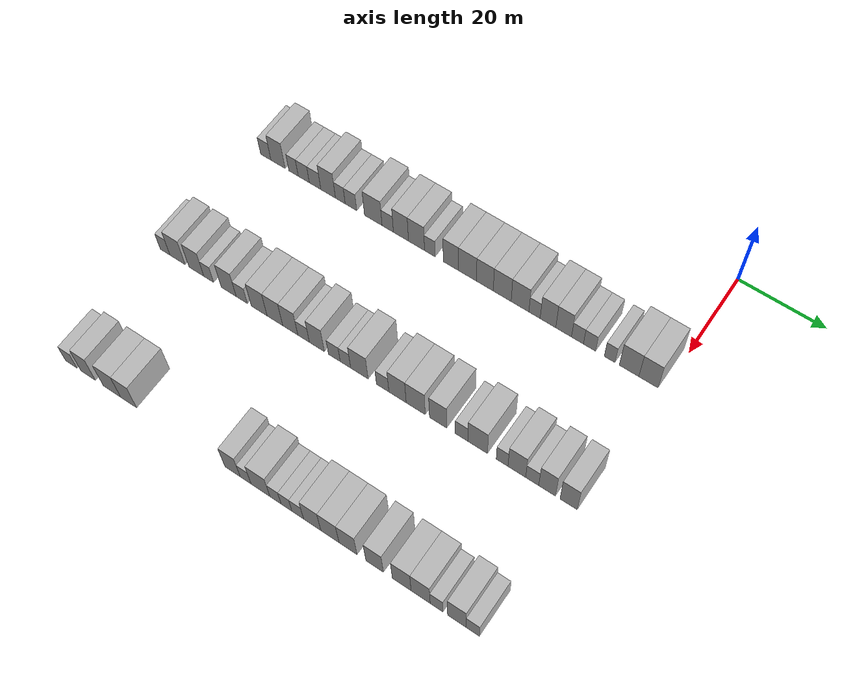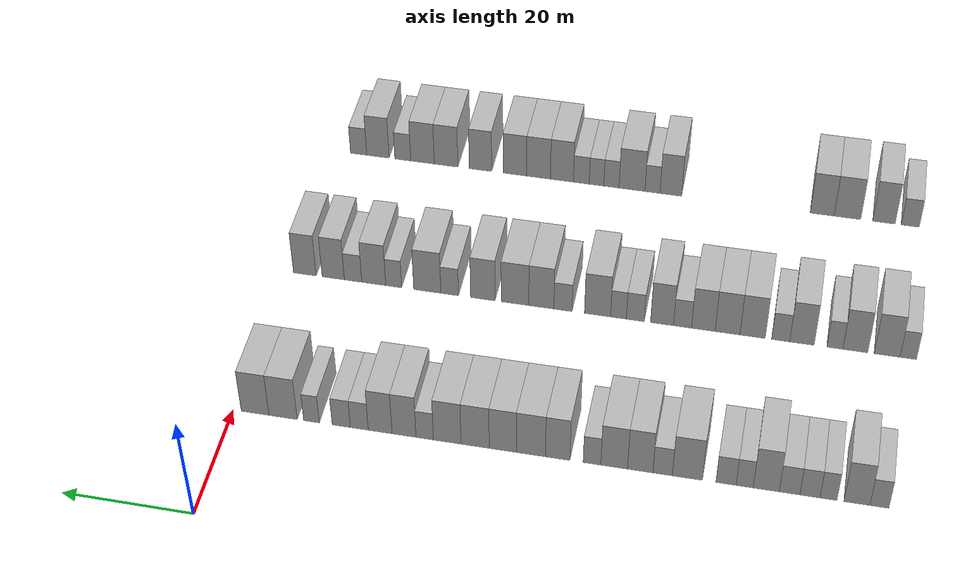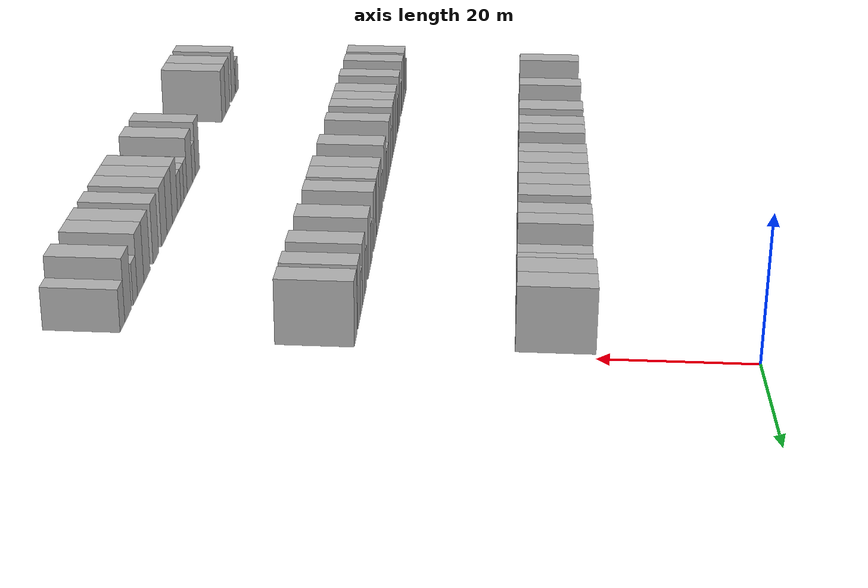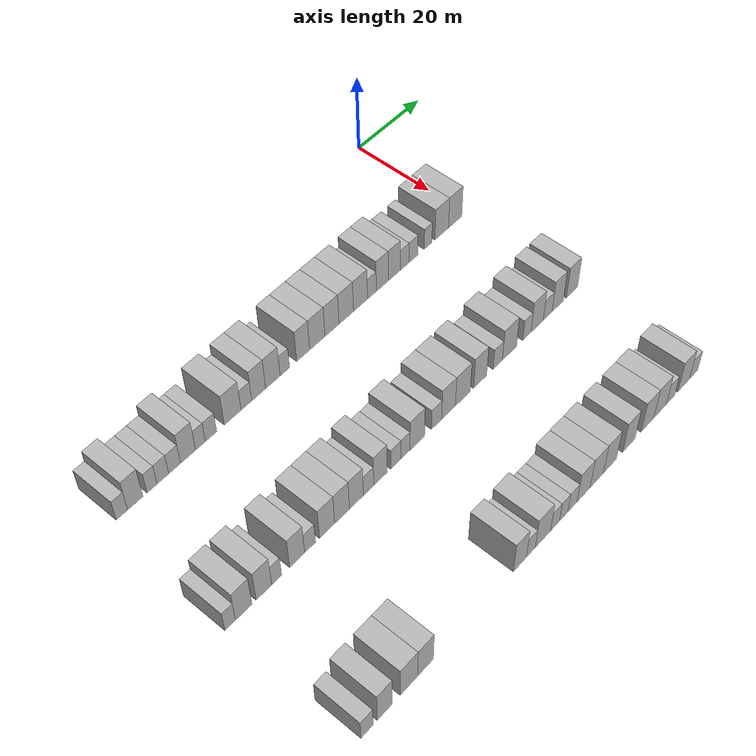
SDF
<sdf version="1.6">
 <world name="default">
  <model name="building_48">
   <static>1</static>
   <pose>25.0000 -97.3295 0 0.000000 0.000000 0.000000</pose>
   <link name="link">
    <pose>0 0 3.00 0 0 0</pose>
    <collision name="collision"><geometry><box><size>10.0000 2.7321 6.0000</size></box></geometry></collision>
    <visual name="visual">
     <cast_shadows>0</cast_shadows>
     <geometry><box><size>10.0000 2.7321 6.0000</size></box></geometry>
     <material>
      <script>
       <uri>model://HANNAS_wall/materials/scripts</uri>
       <uri>model://HANNAS_wall/materials/textures</uri>
       <name>vrc/HANNAS_wall</name>
      </script>
     </material>
    </visual>
   </link>
  </model>
  <model name="building_49">
   <static>1</static>
   <pose>25.0000 -94.0868 0 0.000000 0.000000 0.000000</pose>
   <link name="link">
    <pose>0 0 4.50 0 0 0</pose>
    <collision name="collision"><geometry><box><size>10.0000 3.7533 9.0000</size></box></geometry></collision>
    <visual name="visual">
     <cast_shadows>0</cast_shadows>
     <geometry><box><size>10.0000 3.7533 9.0000</size></box></geometry>
     <material>
      <script>
       <uri>model://HANNAS_wall/materials/scripts</uri>
       <uri>model://HANNAS_wall/materials/textures</uri>
       <name>vrc/HANNAS_wall</name>
      </script>
     </material>
    </visual>
   </link>
  </model>
  <model name="building_50">
   <static>1</static>
   <pose>25.0000 -89.9725 0 0.000000 0.000000 0.000000</pose>
   <link name="link">
    <pose>0 0 3.00 0 0 0</pose>
    <collision name="collision"><geometry><box><size>10.0000 2.4754 6.0000</size></box></geometry></collision>
    <visual name="visual">
     <cast_shadows>0</cast_shadows>
     <geometry><box><size>10.0000 2.4754 6.0000</size></box></geometry>
     <material>
      <script>
       <uri>model://HANNAS_wall/materials/scripts</uri>
       <uri>model://HANNAS_wall/materials/textures</uri>
       <name>vrc/HANNAS_wall</name>
      </script>
     </material>
    </visual>
   </link>
  </model>
  <model name="building_51">
   <static>1</static>
   <pose>25.0000 -87.2771 0 0.000000 0.000000 0.000000</pose>
   <link name="link">
    <pose>0 0 3.00 0 0 0</pose>
    <collision name="collision"><geometry><box><size>10.0000 2.9154 6.0000</size></box></geometry></collision>
    <visual name="visual">
     <cast_shadows>0</cast_shadows>
     <geometry><box><size>10.0000 2.9154 6.0000</size></box></geometry>
     <material>
      <script>
       <uri>model://HANNAS_wall/materials/scripts</uri>
       <uri>model://HANNAS_wall/materials/textures</uri>
       <name>vrc/HANNAS_wall</name>
      </script>
     </material>
    </visual>
   </link>
  </model>
  <model name="building_52">
   <static>1</static>
   <pose>25.0000 -84.3198 0 0.000000 0.000000 0.000000</pose>
   <link name="link">
    <pose>0 0 3.00 0 0 0</pose>
    <collision name="collision"><geometry><box><size>10.0000 2.9992 6.0000</size></box></geometry></collision>
    <visual name="visual">
     <cast_shadows>0</cast_shadows>
     <geometry><box><size>10.0000 2.9992 6.0000</size></box></geometry>
     <material>
      <script>
       <uri>model://HANNAS_wall/materials/scripts</uri>
       <uri>model://HANNAS_wall/materials/textures</uri>
       <name>vrc/HANNAS_wall</name>
      </script>
     </material>
    </visual>
   </link>
  </model>
  <model name="building_53">
   <static>1</static>
   <pose>25.0000 -80.9112 0 0.000000 0.000000 0.000000</pose>
   <link name="link">
    <pose>0 0 4.50 0 0 0</pose>
    <collision name="collision"><geometry><box><size>10.0000 3.8180 9.0000</size></box></geometry></collision>
    <visual name="visual">
     <cast_shadows>0</cast_shadows>
     <geometry><box><size>10.0000 3.8180 9.0000</size></box></geometry>
     <material>
      <script>
       <uri>model://HANNAS_wall/materials/scripts</uri>
       <uri>model://HANNAS_wall/materials/textures</uri>
       <name>vrc/HANNAS_wall</name>
      </script>
     </material>
    </visual>
   </link>
  </model>
  <model name="building_54">
   <static>1</static>
   <pose>25.0000 -77.7514 0 0.000000 0.000000 0.000000</pose>
   <link name="link">
    <pose>0 0 3.00 0 0 0</pose>
    <collision name="collision"><geometry><box><size>10.0000 2.5016 6.0000</size></box></geometry></collision>
    <visual name="visual">
     <cast_shadows>0</cast_shadows>
     <geometry><box><size>10.0000 2.5016 6.0000</size></box></geometry>
     <material>
      <script>
       <uri>model://HANNAS_wall/materials/scripts</uri>
       <uri>model://HANNAS_wall/materials/textures</uri>
       <name>vrc/HANNAS_wall</name>
      </script>
     </material>
    </visual>
   </link>
  </model>
  <model name="building_55">
   <static>1</static>
   <pose>25.0000 -75.0186 0 0.000000 0.000000 0.000000</pose>
   <link name="link">
    <pose>0 0 3.00 0 0 0</pose>
    <collision name="collision"><geometry><box><size>10.0000 2.9640 6.0000</size></box></geometry></collision>
    <visual name="visual">
     <cast_shadows>0</cast_shadows>
     <geometry><box><size>10.0000 2.9640 6.0000</size></box></geometry>
     <material>
      <script>
       <uri>model://HANNAS_wall/materials/scripts</uri>
       <uri>model://HANNAS_wall/materials/textures</uri>
       <name>vrc/HANNAS_wall</name>
      </script>
     </material>
    </visual>
   </link>
  </model>
  <model name="building_56">
   <static>1</static>
   <pose>25.0000 -69.3119 0 0.000000 0.000000 0.000000</pose>
   <link name="link">
    <pose>0 0 4.50 0 0 0</pose>
    <collision name="collision"><geometry><box><size>10.0000 4.4494 9.0000</size></box></geometry></collision>
    <visual name="visual">
     <cast_shadows>0</cast_shadows>
     <geometry><box><size>10.0000 4.4494 9.0000</size></box></geometry>
     <material>
      <script>
       <uri>model://HANNAS_wall/materials/scripts</uri>
       <uri>model://HANNAS_wall/materials/textures</uri>
       <name>vrc/HANNAS_wall</name>
      </script>
     </material>
    </visual>
   </link>
  </model>
  <model name="building_57">
   <static>1</static>
   <pose>25.0000 -65.6506 0 0.000000 0.000000 0.000000</pose>
   <link name="link">
    <pose>0 0 3.00 0 0 0</pose>
    <collision name="collision"><geometry><box><size>10.0000 2.8732 6.0000</size></box></geometry></collision>
    <visual name="visual">
     <cast_shadows>0</cast_shadows>
     <geometry><box><size>10.0000 2.8732 6.0000</size></box></geometry>
     <material>
      <script>
       <uri>model://HANNAS_wall/materials/scripts</uri>
       <uri>model://HANNAS_wall/materials/textures</uri>
       <name>vrc/HANNAS_wall</name>
      </script>
     </material>
    </visual>
   </link>
  </model>
  <model name="building_58">
   <static>1</static>
   <pose>25.0000 -62.3224 0 0.000000 0.000000 0.000000</pose>
   <link name="link">
    <pose>0 0 4.50 0 0 0</pose>
    <collision name="collision"><geometry><box><size>10.0000 3.7832 9.0000</size></box></geometry></collision>
    <visual name="visual">
     <cast_shadows>0</cast_shadows>
     <geometry><box><size>10.0000 3.7832 9.0000</size></box></geometry>
     <material>
      <script>
       <uri>model://HANNAS_wall/materials/scripts</uri>
       <uri>model://HANNAS_wall/materials/textures</uri>
       <name>vrc/HANNAS_wall</name>
      </script>
     </material>
    </visual>
   </link>
  </model>
  <model name="building_59">
   <static>1</static>
   <pose>25.0000 -58.4330 0 0.000000 0.000000 0.000000</pose>
   <link name="link">
    <pose>0 0 4.50 0 0 0</pose>
    <collision name="collision"><geometry><box><size>10.0000 3.9956 9.0000</size></box></geometry></collision>
    <visual name="visual">
     <cast_shadows>0</cast_shadows>
     <geometry><box><size>10.0000 3.9956 9.0000</size></box></geometry>
     <material>
      <script>
       <uri>model://HANNAS_wall/materials/scripts</uri>
       <uri>model://HANNAS_wall/materials/textures</uri>
       <name>vrc/HANNAS_wall</name>
      </script>
     </material>
    </visual>
   </link>
  </model>
  <model name="building_60">
   <static>1</static>
   <pose>25.0000 -55.1191 0 0.000000 0.000000 0.000000</pose>
   <link name="link">
    <pose>0 0 3.00 0 0 0</pose>
    <collision name="collision"><geometry><box><size>10.0000 2.6323 6.0000</size></box></geometry></collision>
    <visual name="visual">
     <cast_shadows>0</cast_shadows>
     <geometry><box><size>10.0000 2.6323 6.0000</size></box></geometry>
     <material>
      <script>
       <uri>model://HANNAS_wall/materials/scripts</uri>
       <uri>model://HANNAS_wall/materials/textures</uri>
       <name>vrc/HANNAS_wall</name>
      </script>
     </material>
    </visual>
   </link>
  </model>
  <model name="building_61">
   <static>1</static>
   <pose>25.0000 -49.9609 0 0.000000 0.000000 0.000000</pose>
   <link name="link">
    <pose>0 0 4.50 0 0 0</pose>
    <collision name="collision"><geometry><box><size>10.0000 3.6841 9.0000</size></box></geometry></collision>
    <visual name="visual">
     <cast_shadows>0</cast_shadows>
     <geometry><box><size>10.0000 3.6841 9.0000</size></box></geometry>
     <material>
      <script>
       <uri>model://HANNAS_wall/materials/scripts</uri>
       <uri>model://HANNAS_wall/materials/textures</uri>
       <name>vrc/HANNAS_wall</name>
      </script>
     </material>
    </visual>
   </link>
  </model>
  <model name="building_62">
   <static>1</static>
   <pose>25.0000 -45.9126 0 0.000000 0.000000 0.000000</pose>
   <link name="link">
    <pose>0 0 4.50 0 0 0</pose>
    <collision name="collision"><geometry><box><size>10.0000 4.4127 9.0000</size></box></geometry></collision>
    <visual name="visual">
     <cast_shadows>0</cast_shadows>
     <geometry><box><size>10.0000 4.4127 9.0000</size></box></geometry>
     <material>
      <script>
       <uri>model://HANNAS_wall/materials/scripts</uri>
       <uri>model://HANNAS_wall/materials/textures</uri>
       <name>vrc/HANNAS_wall</name>
      </script>
     </material>
    </visual>
   </link>
  </model>
  <model name="building_63">
   <static>1</static>
   <pose>25.0000 -41.6601 0 0.000000 0.000000 0.000000</pose>
   <link name="link">
    <pose>0 0 4.50 0 0 0</pose>
    <collision name="collision"><geometry><box><size>10.0000 4.0923 9.0000</size></box></geometry></collision>
    <visual name="visual">
     <cast_shadows>0</cast_shadows>
     <geometry><box><size>10.0000 4.0923 9.0000</size></box></geometry>
     <material>
      <script>
       <uri>model://HANNAS_wall/materials/scripts</uri>
       <uri>model://HANNAS_wall/materials/textures</uri>
       <name>vrc/HANNAS_wall</name>
      </script>
     </material>
    </visual>
   </link>
  </model>
  <model name="building_64">
   <static>1</static>
   <pose>25.0000 -37.4674 0 0.000000 0.000000 0.000000</pose>
   <link name="link">
    <pose>0 0 4.50 0 0 0</pose>
    <collision name="collision"><geometry><box><size>10.0000 4.2931 9.0000</size></box></geometry></collision>
    <visual name="visual">
     <cast_shadows>0</cast_shadows>
     <geometry><box><size>10.0000 4.2931 9.0000</size></box></geometry>
     <material>
      <script>
       <uri>model://HANNAS_wall/materials/scripts</uri>
       <uri>model://HANNAS_wall/materials/textures</uri>
       <name>vrc/HANNAS_wall</name>
      </script>
     </material>
    </visual>
   </link>
  </model>
  <model name="building_65">
   <static>1</static>
   <pose>25.0000 -33.2073 0 0.000000 0.000000 0.000000</pose>
   <link name="link">
    <pose>0 0 4.50 0 0 0</pose>
    <collision name="collision"><geometry><box><size>10.0000 4.2271 9.0000</size></box></geometry></collision>
    <visual name="visual">
     <cast_shadows>0</cast_shadows>
     <geometry><box><size>10.0000 4.2271 9.0000</size></box></geometry>
     <material>
      <script>
       <uri>model://HANNAS_wall/materials/scripts</uri>
       <uri>model://HANNAS_wall/materials/textures</uri>
       <name>vrc/HANNAS_wall</name>
      </script>
     </material>
    </visual>
   </link>
  </model>
  <model name="building_66">
   <static>1</static>
   <pose>25.0000 -29.7613 0 0.000000 0.000000 0.000000</pose>
   <link name="link">
    <pose>0 0 3.00 0 0 0</pose>
    <collision name="collision"><geometry><box><size>10.0000 2.6650 6.0000</size></box></geometry></collision>
    <visual name="visual">
     <cast_shadows>0</cast_shadows>
     <geometry><box><size>10.0000 2.6650 6.0000</size></box></geometry>
     <material>
      <script>
       <uri>model://HANNAS_wall/materials/scripts</uri>
       <uri>model://HANNAS_wall/materials/textures</uri>
       <name>vrc/HANNAS_wall</name>
      </script>
     </material>
    </visual>
   </link>
  </model>
  <model name="building_67">
   <static>1</static>
   <pose>25.0000 -26.5884 0 0.000000 0.000000 0.000000</pose>
   <link name="link">
    <pose>0 0 4.50 0 0 0</pose>
    <collision name="collision"><geometry><box><size>10.0000 3.6808 9.0000</size></box></geometry></collision>
    <visual name="visual">
     <cast_shadows>0</cast_shadows>
     <geometry><box><size>10.0000 3.6808 9.0000</size></box></geometry>
     <material>
      <script>
       <uri>model://HANNAS_wall/materials/scripts</uri>
       <uri>model://HANNAS_wall/materials/textures</uri>
       <name>vrc/HANNAS_wall</name>
      </script>
     </material>
    </visual>
   </link>
  </model>
  <model name="building_68">
   <static>1</static>
   <pose>25.0000 -22.9116 0 0.000000 0.000000 0.000000</pose>
   <link name="link">
    <pose>0 0 4.50 0 0 0</pose>
    <collision name="collision"><geometry><box><size>10.0000 3.6726 9.0000</size></box></geometry></collision>
    <visual name="visual">
     <cast_shadows>0</cast_shadows>
     <geometry><box><size>10.0000 3.6726 9.0000</size></box></geometry>
     <material>
      <script>
       <uri>model://HANNAS_wall/materials/scripts</uri>
       <uri>model://HANNAS_wall/materials/textures</uri>
       <name>vrc/HANNAS_wall</name>
      </script>
     </material>
    </visual>
   </link>
  </model>
  <model name="building_69">
   <static>1</static>
   <pose>25.0000 -19.6839 0 0.000000 0.000000 0.000000</pose>
   <link name="link">
    <pose>0 0 3.00 0 0 0</pose>
    <collision name="collision"><geometry><box><size>10.0000 2.7829 6.0000</size></box></geometry></collision>
    <visual name="visual">
     <cast_shadows>0</cast_shadows>
     <geometry><box><size>10.0000 2.7829 6.0000</size></box></geometry>
     <material>
      <script>
       <uri>model://HANNAS_wall/materials/scripts</uri>
       <uri>model://HANNAS_wall/materials/textures</uri>
       <name>vrc/HANNAS_wall</name>
      </script>
     </material>
    </visual>
   </link>
  </model>
  <model name="building_70">
   <static>1</static>
   <pose>25.0000 -16.8830 0 0.000000 0.000000 0.000000</pose>
   <link name="link">
    <pose>0 0 3.00 0 0 0</pose>
    <collision name="collision"><geometry><box><size>10.0000 2.8188 6.0000</size></box></geometry></collision>
    <visual name="visual">
     <cast_shadows>0</cast_shadows>
     <geometry><box><size>10.0000 2.8188 6.0000</size></box></geometry>
     <material>
      <script>
       <uri>model://HANNAS_wall/materials/scripts</uri>
       <uri>model://HANNAS_wall/materials/textures</uri>
       <name>vrc/HANNAS_wall</name>
      </script>
     </material>
    </visual>
   </link>
  </model>
  <model name="building_71">
   <static>1</static>
   <pose>25.0000 -12.2518 0 0.000000 0.000000 0.000000</pose>
   <link name="link">
    <pose>0 0 3.00 0 0 0</pose>
    <collision name="collision"><geometry><box><size>10.0000 2.4435 6.0000</size></box></geometry></collision>
    <visual name="visual">
     <cast_shadows>0</cast_shadows>
     <geometry><box><size>10.0000 2.4435 6.0000</size></box></geometry>
     <material>
      <script>
       <uri>model://HANNAS_wall/materials/scripts</uri>
       <uri>model://HANNAS_wall/materials/textures</uri>
       <name>vrc/HANNAS_wall</name>
      </script>
     </material>
    </visual>
   </link>
  </model>
  <model name="building_72">
   <static>1</static>
   <pose>25.0000 -7.8174 0 0.000000 0.000000 0.000000</pose>
   <link name="link">
    <pose>0 0 4.50 0 0 0</pose>
    <collision name="collision"><geometry><box><size>10.0000 4.4253 9.0000</size></box></geometry></collision>
    <visual name="visual">
     <cast_shadows>0</cast_shadows>
     <geometry><box><size>10.0000 4.4253 9.0000</size></box></geometry>
     <material>
      <script>
       <uri>model://HANNAS_wall/materials/scripts</uri>
       <uri>model://HANNAS_wall/materials/textures</uri>
       <name>vrc/HANNAS_wall</name>
      </script>
     </material>
    </visual>
   </link>
  </model>
  <model name="building_73">
   <static>1</static>
   <pose>25.0000 -3.4283 0 0.000000 0.000000 0.000000</pose>
   <link name="link">
    <pose>0 0 4.50 0 0 0</pose>
    <collision name="collision"><geometry><box><size>10.0000 4.3529 9.0000</size></box></geometry></collision>
    <visual name="visual">
     <cast_shadows>0</cast_shadows>
     <geometry><box><size>10.0000 4.3529 9.0000</size></box></geometry>
     <material>
      <script>
       <uri>model://HANNAS_wall/materials/scripts</uri>
       <uri>model://HANNAS_wall/materials/textures</uri>
       <name>vrc/HANNAS_wall</name>
      </script>
     </material>
    </visual>
   </link>
  </model>
  <model name="building_190">
   <static>1</static>
   <pose>55.0000 -100.1176 0 0.000000 0.000000 0.000000</pose>
   <link name="link">
    <pose>0 0 3.00 0 0 0</pose>
    <collision name="collision"><geometry><box><size>10.0000 2.5347 6.0000</size></box></geometry></collision>
    <visual name="visual">
     <cast_shadows>0</cast_shadows>
     <geometry><box><size>10.0000 2.5347 6.0000</size></box></geometry>
     <material>
      <script>
       <uri>model://HANNAS_wall/materials/scripts</uri>
       <uri>model://HANNAS_wall/materials/textures</uri>
       <name>vrc/HANNAS_wall</name>
      </script>
     </material>
    </visual>
   </link>
  </model>
  <model name="building_191">
   <static>1</static>
   <pose>55.0000 -96.8507 0 0.000000 0.000000 0.000000</pose>
   <link name="link">
    <pose>0 0 4.50 0 0 0</pose>
    <collision name="collision"><geometry><box><size>10.0000 3.9991 9.0000</size></box></geometry></collision>
    <visual name="visual">
     <cast_shadows>0</cast_shadows>
     <geometry><box><size>10.0000 3.9991 9.0000</size></box></geometry>
     <material>
      <script>
       <uri>model://HANNAS_wall/materials/scripts</uri>
       <uri>model://HANNAS_wall/materials/textures</uri>
       <name>vrc/HANNAS_wall</name>
      </script>
     </material>
    </visual>
   </link>
  </model>
  <model name="building_192">
   <static>1</static>
   <pose>55.0000 -91.9176 0 0.000000 0.000000 0.000000</pose>
   <link name="link">
    <pose>0 0 4.50 0 0 0</pose>
    <collision name="collision"><geometry><box><size>10.0000 3.8671 9.0000</size></box></geometry></collision>
    <visual name="visual">
     <cast_shadows>0</cast_shadows>
     <geometry><box><size>10.0000 3.8671 9.0000</size></box></geometry>
     <material>
      <script>
       <uri>model://HANNAS_wall/materials/scripts</uri>
       <uri>model://HANNAS_wall/materials/textures</uri>
       <name>vrc/HANNAS_wall</name>
      </script>
     </material>
    </visual>
   </link>
  </model>
  <model name="building_193">
   <static>1</static>
   <pose>55.0000 -88.7421 0 0.000000 0.000000 0.000000</pose>
   <link name="link">
    <pose>0 0 3.00 0 0 0</pose>
    <collision name="collision"><geometry><box><size>10.0000 2.4838 6.0000</size></box></geometry></collision>
    <visual name="visual">
     <cast_shadows>0</cast_shadows>
     <geometry><box><size>10.0000 2.4838 6.0000</size></box></geometry>
     <material>
      <script>
       <uri>model://HANNAS_wall/materials/scripts</uri>
       <uri>model://HANNAS_wall/materials/textures</uri>
       <name>vrc/HANNAS_wall</name>
      </script>
     </material>
    </visual>
   </link>
  </model>
  <model name="building_194">
   <static>1</static>
   <pose>55.0000 -83.5907 0 0.000000 0.000000 0.000000</pose>
   <link name="link">
    <pose>0 0 4.50 0 0 0</pose>
    <collision name="collision"><geometry><box><size>10.0000 3.8189 9.0000</size></box></geometry></collision>
    <visual name="visual">
     <cast_shadows>0</cast_shadows>
     <geometry><box><size>10.0000 3.8189 9.0000</size></box></geometry>
     <material>
      <script>
       <uri>model://HANNAS_wall/materials/scripts</uri>
       <uri>model://HANNAS_wall/materials/textures</uri>
       <name>vrc/HANNAS_wall</name>
      </script>
     </material>
    </visual>
   </link>
  </model>
  <model name="building_195">
   <static>1</static>
   <pose>55.0000 -80.2607 0 0.000000 0.000000 0.000000</pose>
   <link name="link">
    <pose>0 0 3.00 0 0 0</pose>
    <collision name="collision"><geometry><box><size>10.0000 2.8410 6.0000</size></box></geometry></collision>
    <visual name="visual">
     <cast_shadows>0</cast_shadows>
     <geometry><box><size>10.0000 2.8410 6.0000</size></box></geometry>
     <material>
      <script>
       <uri>model://HANNAS_wall/materials/scripts</uri>
       <uri>model://HANNAS_wall/materials/textures</uri>
       <name>vrc/HANNAS_wall</name>
      </script>
     </material>
    </visual>
   </link>
  </model>
  <model name="building_196">
   <static>1</static>
   <pose>55.0000 -75.8495 0 0.000000 0.000000 0.000000</pose>
   <link name="link">
    <pose>0 0 4.50 0 0 0</pose>
    <collision name="collision"><geometry><box><size>10.0000 3.9814 9.0000</size></box></geometry></collision>
    <visual name="visual">
     <cast_shadows>0</cast_shadows>
     <geometry><box><size>10.0000 3.9814 9.0000</size></box></geometry>
     <material>
      <script>
       <uri>model://HANNAS_wall/materials/scripts</uri>
       <uri>model://HANNAS_wall/materials/textures</uri>
       <name>vrc/HANNAS_wall</name>
      </script>
     </material>
    </visual>
   </link>
  </model>
  <model name="building_197">
   <static>1</static>
   <pose>55.0000 -71.8935 0 0.000000 0.000000 0.000000</pose>
   <link name="link">
    <pose>0 0 4.50 0 0 0</pose>
    <collision name="collision"><geometry><box><size>10.0000 3.9306 9.0000</size></box></geometry></collision>
    <visual name="visual">
     <cast_shadows>0</cast_shadows>
     <geometry><box><size>10.0000 3.9306 9.0000</size></box></geometry>
     <material>
      <script>
       <uri>model://HANNAS_wall/materials/scripts</uri>
       <uri>model://HANNAS_wall/materials/textures</uri>
       <name>vrc/HANNAS_wall</name>
      </script>
     </material>
    </visual>
   </link>
  </model>
  <model name="building_198">
   <static>1</static>
   <pose>55.0000 -68.0519 0 0.000000 0.000000 0.000000</pose>
   <link name="link">
    <pose>0 0 4.50 0 0 0</pose>
    <collision name="collision"><geometry><box><size>10.0000 3.7526 9.0000</size></box></geometry></collision>
    <visual name="visual">
     <cast_shadows>0</cast_shadows>
     <geometry><box><size>10.0000 3.7526 9.0000</size></box></geometry>
     <material>
      <script>
       <uri>model://HANNAS_wall/materials/scripts</uri>
       <uri>model://HANNAS_wall/materials/textures</uri>
       <name>vrc/HANNAS_wall</name>
      </script>
     </material>
    </visual>
   </link>
  </model>
  <model name="building_199">
   <static>1</static>
   <pose>55.0000 -64.7475 0 0.000000 0.000000 0.000000</pose>
   <link name="link">
    <pose>0 0 3.00 0 0 0</pose>
    <collision name="collision"><geometry><box><size>10.0000 2.8561 6.0000</size></box></geometry></collision>
    <visual name="visual">
     <cast_shadows>0</cast_shadows>
     <geometry><box><size>10.0000 2.8561 6.0000</size></box></geometry>
     <material>
      <script>
       <uri>model://HANNAS_wall/materials/scripts</uri>
       <uri>model://HANNAS_wall/materials/textures</uri>
       <name>vrc/HANNAS_wall</name>
      </script>
     </material>
    </visual>
   </link>
  </model>
  <model name="building_200">
   <static>1</static>
   <pose>55.0000 -61.4829 0 0.000000 0.000000 0.000000</pose>
   <link name="link">
    <pose>0 0 4.50 0 0 0</pose>
    <collision name="collision"><geometry><box><size>10.0000 3.6731 9.0000</size></box></geometry></collision>
    <visual name="visual">
     <cast_shadows>0</cast_shadows>
     <geometry><box><size>10.0000 3.6731 9.0000</size></box></geometry>
     <material>
      <script>
       <uri>model://HANNAS_wall/materials/scripts</uri>
       <uri>model://HANNAS_wall/materials/textures</uri>
       <name>vrc/HANNAS_wall</name>
      </script>
     </material>
    </visual>
   </link>
  </model>
  <model name="building_201">
   <static>1</static>
   <pose>55.0000 -57.2095 0 0.000000 0.000000 0.000000</pose>
   <link name="link">
    <pose>0 0 3.00 0 0 0</pose>
    <collision name="collision"><geometry><box><size>10.0000 2.8739 6.0000</size></box></geometry></collision>
    <visual name="visual">
     <cast_shadows>0</cast_shadows>
     <geometry><box><size>10.0000 2.8739 6.0000</size></box></geometry>
     <material>
      <script>
       <uri>model://HANNAS_wall/materials/scripts</uri>
       <uri>model://HANNAS_wall/materials/textures</uri>
       <name>vrc/HANNAS_wall</name>
      </script>
     </material>
    </visual>
   </link>
  </model>
  <model name="building_202">
   <static>1</static>
   <pose>55.0000 -54.5111 0 0.000000 0.000000 0.000000</pose>
   <link name="link">
    <pose>0 0 3.00 0 0 0</pose>
    <collision name="collision"><geometry><box><size>10.0000 2.5228 6.0000</size></box></geometry></collision>
    <visual name="visual">
     <cast_shadows>0</cast_shadows>
     <geometry><box><size>10.0000 2.5228 6.0000</size></box></geometry>
     <material>
      <script>
       <uri>model://HANNAS_wall/materials/scripts</uri>
       <uri>model://HANNAS_wall/materials/textures</uri>
       <name>vrc/HANNAS_wall</name>
      </script>
     </material>
    </visual>
   </link>
  </model>
  <model name="building_203">
   <static>1</static>
   <pose>55.0000 -51.1452 0 0.000000 0.000000 0.000000</pose>
   <link name="link">
    <pose>0 0 4.50 0 0 0</pose>
    <collision name="collision"><geometry><box><size>10.0000 4.2090 9.0000</size></box></geometry></collision>
    <visual name="visual">
     <cast_shadows>0</cast_shadows>
     <geometry><box><size>10.0000 4.2090 9.0000</size></box></geometry>
     <material>
      <script>
       <uri>model://HANNAS_wall/materials/scripts</uri>
       <uri>model://HANNAS_wall/materials/textures</uri>
       <name>vrc/HANNAS_wall</name>
      </script>
     </material>
    </visual>
   </link>
  </model>
  <model name="building_204">
   <static>1</static>
   <pose>55.0000 -45.5649 0 0.000000 0.000000 0.000000</pose>
   <link name="link">
    <pose>0 0 3.00 0 0 0</pose>
    <collision name="collision"><geometry><box><size>10.0000 2.9517 6.0000</size></box></geometry></collision>
    <visual name="visual">
     <cast_shadows>0</cast_shadows>
     <geometry><box><size>10.0000 2.9517 6.0000</size></box></geometry>
     <material>
      <script>
       <uri>model://HANNAS_wall/materials/scripts</uri>
       <uri>model://HANNAS_wall/materials/textures</uri>
       <name>vrc/HANNAS_wall</name>
      </script>
     </material>
    </visual>
   </link>
  </model>
  <model name="building_205">
   <static>1</static>
   <pose>55.0000 -42.0455 0 0.000000 0.000000 0.000000</pose>
   <link name="link">
    <pose>0 0 4.50 0 0 0</pose>
    <collision name="collision"><geometry><box><size>10.0000 4.0872 9.0000</size></box></geometry></collision>
    <visual name="visual">
     <cast_shadows>0</cast_shadows>
     <geometry><box><size>10.0000 4.0872 9.0000</size></box></geometry>
     <material>
      <script>
       <uri>model://HANNAS_wall/materials/scripts</uri>
       <uri>model://HANNAS_wall/materials/textures</uri>
       <name>vrc/HANNAS_wall</name>
      </script>
     </material>
    </visual>
   </link>
  </model>
  <model name="building_206">
   <static>1</static>
   <pose>55.0000 -37.7633 0 0.000000 0.000000 0.000000</pose>
   <link name="link">
    <pose>0 0 4.50 0 0 0</pose>
    <collision name="collision"><geometry><box><size>10.0000 4.4772 9.0000</size></box></geometry></collision>
    <visual name="visual">
     <cast_shadows>0</cast_shadows>
     <geometry><box><size>10.0000 4.4772 9.0000</size></box></geometry>
     <material>
      <script>
       <uri>model://HANNAS_wall/materials/scripts</uri>
       <uri>model://HANNAS_wall/materials/textures</uri>
       <name>vrc/HANNAS_wall</name>
      </script>
     </material>
    </visual>
   </link>
  </model>
  <model name="building_207">
   <static>1</static>
   <pose>55.0000 -32.5283 0 0.000000 0.000000 0.000000</pose>
   <link name="link">
    <pose>0 0 4.50 0 0 0</pose>
    <collision name="collision"><geometry><box><size>10.0000 3.9927 9.0000</size></box></geometry></collision>
    <visual name="visual">
     <cast_shadows>0</cast_shadows>
     <geometry><box><size>10.0000 3.9927 9.0000</size></box></geometry>
     <material>
      <script>
       <uri>model://HANNAS_wall/materials/scripts</uri>
       <uri>model://HANNAS_wall/materials/textures</uri>
       <name>vrc/HANNAS_wall</name>
      </script>
     </material>
    </visual>
   </link>
  </model>
  <model name="building_208">
   <static>1</static>
   <pose>55.0000 -27.0818 0 0.000000 0.000000 0.000000</pose>
   <link name="link">
    <pose>0 0 3.00 0 0 0</pose>
    <collision name="collision"><geometry><box><size>10.0000 2.9005 6.0000</size></box></geometry></collision>
    <visual name="visual">
     <cast_shadows>0</cast_shadows>
     <geometry><box><size>10.0000 2.9005 6.0000</size></box></geometry>
     <material>
      <script>
       <uri>model://HANNAS_wall/materials/scripts</uri>
       <uri>model://HANNAS_wall/materials/textures</uri>
       <name>vrc/HANNAS_wall</name>
      </script>
     </material>
    </visual>
   </link>
  </model>
  <model name="building_209">
   <static>1</static>
   <pose>55.0000 -23.3978 0 0.000000 0.000000 0.000000</pose>
   <link name="link">
    <pose>0 0 4.50 0 0 0</pose>
    <collision name="collision"><geometry><box><size>10.0000 4.4674 9.0000</size></box></geometry></collision>
    <visual name="visual">
     <cast_shadows>0</cast_shadows>
     <geometry><box><size>10.0000 4.4674 9.0000</size></box></geometry>
     <material>
      <script>
       <uri>model://HANNAS_wall/materials/scripts</uri>
       <uri>model://HANNAS_wall/materials/textures</uri>
       <name>vrc/HANNAS_wall</name>
      </script>
     </material>
    </visual>
   </link>
  </model>
  <model name="building_210">
   <static>1</static>
   <pose>55.0000 -17.8434 0 0.000000 0.000000 0.000000</pose>
   <link name="link">
    <pose>0 0 3.00 0 0 0</pose>
    <collision name="collision"><geometry><box><size>10.0000 2.6415 6.0000</size></box></geometry></collision>
    <visual name="visual">
     <cast_shadows>0</cast_shadows>
     <geometry><box><size>10.0000 2.6415 6.0000</size></box></geometry>
     <material>
      <script>
       <uri>model://HANNAS_wall/materials/scripts</uri>
       <uri>model://HANNAS_wall/materials/textures</uri>
       <name>vrc/HANNAS_wall</name>
      </script>
     </material>
    </visual>
   </link>
  </model>
  <model name="building_211">
   <static>1</static>
   <pose>55.0000 -14.5338 0 0.000000 0.000000 0.000000</pose>
   <link name="link">
    <pose>0 0 4.50 0 0 0</pose>
    <collision name="collision"><geometry><box><size>10.0000 3.9777 9.0000</size></box></geometry></collision>
    <visual name="visual">
     <cast_shadows>0</cast_shadows>
     <geometry><box><size>10.0000 3.9777 9.0000</size></box></geometry>
     <material>
      <script>
       <uri>model://HANNAS_wall/materials/scripts</uri>
       <uri>model://HANNAS_wall/materials/textures</uri>
       <name>vrc/HANNAS_wall</name>
      </script>
     </material>
    </visual>
   </link>
  </model>
  <model name="building_212">
   <static>1</static>
   <pose>55.0000 -11.0897 0 0.000000 0.000000 0.000000</pose>
   <link name="link">
    <pose>0 0 3.00 0 0 0</pose>
    <collision name="collision"><geometry><box><size>10.0000 2.9104 6.0000</size></box></geometry></collision>
    <visual name="visual">
     <cast_shadows>0</cast_shadows>
     <geometry><box><size>10.0000 2.9104 6.0000</size></box></geometry>
     <material>
      <script>
       <uri>model://HANNAS_wall/materials/scripts</uri>
       <uri>model://HANNAS_wall/materials/textures</uri>
       <name>vrc/HANNAS_wall</name>
      </script>
     </material>
    </visual>
   </link>
  </model>
  <model name="building_213">
   <static>1</static>
   <pose>55.0000 -7.7781 0 0.000000 0.000000 0.000000</pose>
   <link name="link">
    <pose>0 0 4.50 0 0 0</pose>
    <collision name="collision"><geometry><box><size>10.0000 3.7128 9.0000</size></box></geometry></collision>
    <visual name="visual">
     <cast_shadows>0</cast_shadows>
     <geometry><box><size>10.0000 3.7128 9.0000</size></box></geometry>
     <material>
      <script>
       <uri>model://HANNAS_wall/materials/scripts</uri>
       <uri>model://HANNAS_wall/materials/textures</uri>
       <name>vrc/HANNAS_wall</name>
      </script>
     </material>
    </visual>
   </link>
  </model>
  <model name="building_214">
   <static>1</static>
   <pose>55.0000 -3.0209 0 0.000000 0.000000 0.000000</pose>
   <link name="link">
    <pose>0 0 4.50 0 0 0</pose>
    <collision name="collision"><geometry><box><size>10.0000 3.8017 9.0000</size></box></geometry></collision>
    <visual name="visual">
     <cast_shadows>0</cast_shadows>
     <geometry><box><size>10.0000 3.8017 9.0000</size></box></geometry>
     <material>
      <script>
       <uri>model://HANNAS_wall/materials/scripts</uri>
       <uri>model://HANNAS_wall/materials/textures</uri>
       <name>vrc/HANNAS_wall</name>
      </script>
     </material>
    </visual>
   </link>
  </model>
  <model name="building_330">
   <static>1</static>
   <pose>85.0000 -99.0932 0 0.000000 0.000000 0.000000</pose>
   <link name="link">
    <pose>0 0 3.00 0 0 0</pose>
    <collision name="collision"><geometry><box><size>10.0000 2.9792 6.0000</size></box></geometry></collision>
    <visual name="visual">
     <cast_shadows>0</cast_shadows>
     <geometry><box><size>10.0000 2.9792 6.0000</size></box></geometry>
     <material>
      <script>
       <uri>model://HANNAS_wall/materials/scripts</uri>
       <uri>model://HANNAS_wall/materials/textures</uri>
       <name>vrc/HANNAS_wall</name>
      </script>
     </material>
    </visual>
   </link>
  </model>
  <model name="building_331">
   <static>1</static>
   <pose>85.0000 -94.7479 0 0.000000 0.000000 0.000000</pose>
   <link name="link">
    <pose>0 0 4.50 0 0 0</pose>
    <collision name="collision"><geometry><box><size>10.0000 3.7113 9.0000</size></box></geometry></collision>
    <visual name="visual">
     <cast_shadows>0</cast_shadows>
     <geometry><box><size>10.0000 3.7113 9.0000</size></box></geometry>
     <material>
      <script>
       <uri>model://HANNAS_wall/materials/scripts</uri>
       <uri>model://HANNAS_wall/materials/textures</uri>
       <name>vrc/HANNAS_wall</name>
      </script>
     </material>
    </visual>
   </link>
  </model>
  <model name="building_332">
   <static>1</static>
   <pose>85.0000 -88.6789 0 0.000000 0.000000 0.000000</pose>
   <link name="link">
    <pose>0 0 4.50 0 0 0</pose>
    <collision name="collision"><geometry><box><size>10.0000 4.4268 9.0000</size></box></geometry></collision>
    <visual name="visual">
     <cast_shadows>0</cast_shadows>
     <geometry><box><size>10.0000 4.4268 9.0000</size></box></geometry>
     <material>
      <script>
       <uri>model://HANNAS_wall/materials/scripts</uri>
       <uri>model://HANNAS_wall/materials/textures</uri>
       <name>vrc/HANNAS_wall</name>
      </script>
     </material>
    </visual>
   </link>
  </model>
  <model name="building_333">
   <static>1</static>
   <pose>85.0000 -84.4636 0 0.000000 0.000000 0.000000</pose>
   <link name="link">
    <pose>0 0 4.50 0 0 0</pose>
    <collision name="collision"><geometry><box><size>10.0000 4.0038 9.0000</size></box></geometry></collision>
    <visual name="visual">
     <cast_shadows>0</cast_shadows>
     <geometry><box><size>10.0000 4.0038 9.0000</size></box></geometry>
     <material>
      <script>
       <uri>model://HANNAS_wall/materials/scripts</uri>
       <uri>model://HANNAS_wall/materials/textures</uri>
       <name>vrc/HANNAS_wall</name>
      </script>
     </material>
    </visual>
   </link>
  </model>
  <model name="building_334">
   <static>1</static>
   <pose>85.0000 -58.9041 0 0.000000 0.000000 0.000000</pose>
   <link name="link">
    <pose>0 0 4.50 0 0 0</pose>
    <collision name="collision"><geometry><box><size>10.0000 3.7050 9.0000</size></box></geometry></collision>
    <visual name="visual">
     <cast_shadows>0</cast_shadows>
     <geometry><box><size>10.0000 3.7050 9.0000</size></box></geometry>
     <material>
      <script>
       <uri>model://HANNAS_wall/materials/scripts</uri>
       <uri>model://HANNAS_wall/materials/textures</uri>
       <name>vrc/HANNAS_wall</name>
      </script>
     </material>
    </visual>
   </link>
  </model>
  <model name="building_335">
   <static>1</static>
   <pose>85.0000 -55.7667 0 0.000000 0.000000 0.000000</pose>
   <link name="link">
    <pose>0 0 3.00 0 0 0</pose>
    <collision name="collision"><geometry><box><size>10.0000 2.5699 6.0000</size></box></geometry></collision>
    <visual name="visual">
     <cast_shadows>0</cast_shadows>
     <geometry><box><size>10.0000 2.5699 6.0000</size></box></geometry>
     <material>
      <script>
       <uri>model://HANNAS_wall/materials/scripts</uri>
       <uri>model://HANNAS_wall/materials/textures</uri>
       <name>vrc/HANNAS_wall</name>
      </script>
     </material>
    </visual>
   </link>
  </model>
  <model name="building_336">
   <static>1</static>
   <pose>85.0000 -52.2597 0 0.000000 0.000000 0.000000</pose>
   <link name="link">
    <pose>0 0 4.50 0 0 0</pose>
    <collision name="collision"><geometry><box><size>10.0000 4.4441 9.0000</size></box></geometry></collision>
    <visual name="visual">
     <cast_shadows>0</cast_shadows>
     <geometry><box><size>10.0000 4.4441 9.0000</size></box></geometry>
     <material>
      <script>
       <uri>model://HANNAS_wall/materials/scripts</uri>
       <uri>model://HANNAS_wall/materials/textures</uri>
       <name>vrc/HANNAS_wall</name>
      </script>
     </material>
    </visual>
   </link>
  </model>
  <model name="building_337">
   <static>1</static>
   <pose>85.0000 -48.7315 0 0.000000 0.000000 0.000000</pose>
   <link name="link">
    <pose>0 0 3.00 0 0 0</pose>
    <collision name="collision"><geometry><box><size>10.0000 2.6124 6.0000</size></box></geometry></collision>
    <visual name="visual">
     <cast_shadows>0</cast_shadows>
     <geometry><box><size>10.0000 2.6124 6.0000</size></box></geometry>
     <material>
      <script>
       <uri>model://HANNAS_wall/materials/scripts</uri>
       <uri>model://HANNAS_wall/materials/textures</uri>
       <name>vrc/HANNAS_wall</name>
      </script>
     </material>
    </visual>
   </link>
  </model>
  <model name="building_338">
   <static>1</static>
   <pose>85.0000 -46.1662 0 0.000000 0.000000 0.000000</pose>
   <link name="link">
    <pose>0 0 3.00 0 0 0</pose>
    <collision name="collision"><geometry><box><size>10.0000 2.5182 6.0000</size></box></geometry></collision>
    <visual name="visual">
     <cast_shadows>0</cast_shadows>
     <geometry><box><size>10.0000 2.5182 6.0000</size></box></geometry>
     <material>
      <script>
       <uri>model://HANNAS_wall/materials/scripts</uri>
       <uri>model://HANNAS_wall/materials/textures</uri>
       <name>vrc/HANNAS_wall</name>
      </script>
     </material>
    </visual>
   </link>
  </model>
  <model name="building_339">
   <static>1</static>
   <pose>85.0000 -43.5450 0 0.000000 0.000000 0.000000</pose>
   <link name="link">
    <pose>0 0 3.00 0 0 0</pose>
    <collision name="collision"><geometry><box><size>10.0000 2.7242 6.0000</size></box></geometry></collision>
    <visual name="visual">
     <cast_shadows>0</cast_shadows>
     <geometry><box><size>10.0000 2.7242 6.0000</size></box></geometry>
     <material>
      <script>
       <uri>model://HANNAS_wall/materials/scripts</uri>
       <uri>model://HANNAS_wall/materials/textures</uri>
       <name>vrc/HANNAS_wall</name>
      </script>
     </material>
    </visual>
   </link>
  </model>
  <model name="building_340">
   <static>1</static>
   <pose>85.0000 -40.1898 0 0.000000 0.000000 0.000000</pose>
   <link name="link">
    <pose>0 0 4.50 0 0 0</pose>
    <collision name="collision"><geometry><box><size>10.0000 3.9862 9.0000</size></box></geometry></collision>
    <visual name="visual">
     <cast_shadows>0</cast_shadows>
     <geometry><box><size>10.0000 3.9862 9.0000</size></box></geometry>
     <material>
      <script>
       <uri>model://HANNAS_wall/materials/scripts</uri>
       <uri>model://HANNAS_wall/materials/textures</uri>
       <name>vrc/HANNAS_wall</name>
      </script>
     </material>
    </visual>
   </link>
  </model>
  <model name="building_341">
   <static>1</static>
   <pose>85.0000 -36.1245 0 0.000000 0.000000 0.000000</pose>
   <link name="link">
    <pose>0 0 4.50 0 0 0</pose>
    <collision name="collision"><geometry><box><size>10.0000 4.1444 9.0000</size></box></geometry></collision>
    <visual name="visual">
     <cast_shadows>0</cast_shadows>
     <geometry><box><size>10.0000 4.1444 9.0000</size></box></geometry>
     <material>
      <script>
       <uri>model://HANNAS_wall/materials/scripts</uri>
       <uri>model://HANNAS_wall/materials/textures</uri>
       <name>vrc/HANNAS_wall</name>
      </script>
     </material>
    </visual>
   </link>
  </model>
  <model name="building_342">
   <static>1</static>
   <pose>85.0000 -32.0098 0 0.000000 0.000000 0.000000</pose>
   <link name="link">
    <pose>0 0 4.50 0 0 0</pose>
    <collision name="collision"><geometry><box><size>10.0000 4.0850 9.0000</size></box></geometry></collision>
    <visual name="visual">
     <cast_shadows>0</cast_shadows>
     <geometry><box><size>10.0000 4.0850 9.0000</size></box></geometry>
     <material>
      <script>
       <uri>model://HANNAS_wall/materials/scripts</uri>
       <uri>model://HANNAS_wall/materials/textures</uri>
       <name>vrc/HANNAS_wall</name>
      </script>
     </material>
    </visual>
   </link>
  </model>
  <model name="building_343">
   <static>1</static>
   <pose>85.0000 -26.0029 0 0.000000 0.000000 0.000000</pose>
   <link name="link">
    <pose>0 0 4.50 0 0 0</pose>
    <collision name="collision"><geometry><box><size>10.0000 3.9288 9.0000</size></box></geometry></collision>
    <visual name="visual">
     <cast_shadows>0</cast_shadows>
     <geometry><box><size>10.0000 3.9288 9.0000</size></box></geometry>
     <material>
      <script>
       <uri>model://HANNAS_wall/materials/scripts</uri>
       <uri>model://HANNAS_wall/materials/textures</uri>
       <name>vrc/HANNAS_wall</name>
      </script>
     </material>
    </visual>
   </link>
  </model>
  <model name="building_344">
   <static>1</static>
   <pose>85.0000 -19.9588 0 0.000000 0.000000 0.000000</pose>
   <link name="link">
    <pose>0 0 4.50 0 0 0</pose>
    <collision name="collision"><geometry><box><size>10.0000 4.1592 9.0000</size></box></geometry></collision>
    <visual name="visual">
     <cast_shadows>0</cast_shadows>
     <geometry><box><size>10.0000 4.1592 9.0000</size></box></geometry>
     <material>
      <script>
       <uri>model://HANNAS_wall/materials/scripts</uri>
       <uri>model://HANNAS_wall/materials/textures</uri>
       <name>vrc/HANNAS_wall</name>
      </script>
     </material>
    </visual>
   </link>
  </model>
  <model name="building_345">
   <static>1</static>
   <pose>85.0000 -15.7911 0 0.000000 0.000000 0.000000</pose>
   <link name="link">
    <pose>0 0 4.50 0 0 0</pose>
    <collision name="collision"><geometry><box><size>10.0000 4.1762 9.0000</size></box></geometry></collision>
    <visual name="visual">
     <cast_shadows>0</cast_shadows>
     <geometry><box><size>10.0000 4.1762 9.0000</size></box></geometry>
     <material>
      <script>
       <uri>model://HANNAS_wall/materials/scripts</uri>
       <uri>model://HANNAS_wall/materials/textures</uri>
       <name>vrc/HANNAS_wall</name>
      </script>
     </material>
    </visual>
   </link>
  </model>
  <model name="building_346">
   <static>1</static>
   <pose>85.0000 -12.2985 0 0.000000 0.000000 0.000000</pose>
   <link name="link">
    <pose>0 0 3.00 0 0 0</pose>
    <collision name="collision"><geometry><box><size>10.0000 2.8089 6.0000</size></box></geometry></collision>
    <visual name="visual">
     <cast_shadows>0</cast_shadows>
     <geometry><box><size>10.0000 2.8089 6.0000</size></box></geometry>
     <material>
      <script>
       <uri>model://HANNAS_wall/materials/scripts</uri>
       <uri>model://HANNAS_wall/materials/textures</uri>
       <name>vrc/HANNAS_wall</name>
      </script>
     </material>
    </visual>
   </link>
  </model>
  <model name="building_347">
   <static>1</static>
   <pose>85.0000 -7.8952 0 0.000000 0.000000 0.000000</pose>
   <link name="link">
    <pose>0 0 4.50 0 0 0</pose>
    <collision name="collision"><geometry><box><size>10.0000 3.9978 9.0000</size></box></geometry></collision>
    <visual name="visual">
     <cast_shadows>0</cast_shadows>
     <geometry><box><size>10.0000 3.9978 9.0000</size></box></geometry>
     <material>
      <script>
       <uri>model://HANNAS_wall/materials/scripts</uri>
       <uri>model://HANNAS_wall/materials/textures</uri>
       <name>vrc/HANNAS_wall</name>
      </script>
     </material>
    </visual>
   </link>
  </model>
  <model name="building_348">
   <static>1</static>
   <pose>85.0000 -4.4583 0 0.000000 0.000000 0.000000</pose>
   <link name="link">
    <pose>0 0 3.00 0 0 0</pose>
    <collision name="collision"><geometry><box><size>10.0000 2.8759 6.0000</size></box></geometry></collision>
    <visual name="visual">
     <cast_shadows>0</cast_shadows>
     <geometry><box><size>10.0000 2.8759 6.0000</size></box></geometry>
     <material>
      <script>
       <uri>model://HANNAS_wall/materials/scripts</uri>
       <uri>model://HANNAS_wall/materials/textures</uri>
       <name>vrc/HANNAS_wall</name>
      </script>
     </material>
    </visual>
   </link>
  </model>
 </world>
</sdf>
